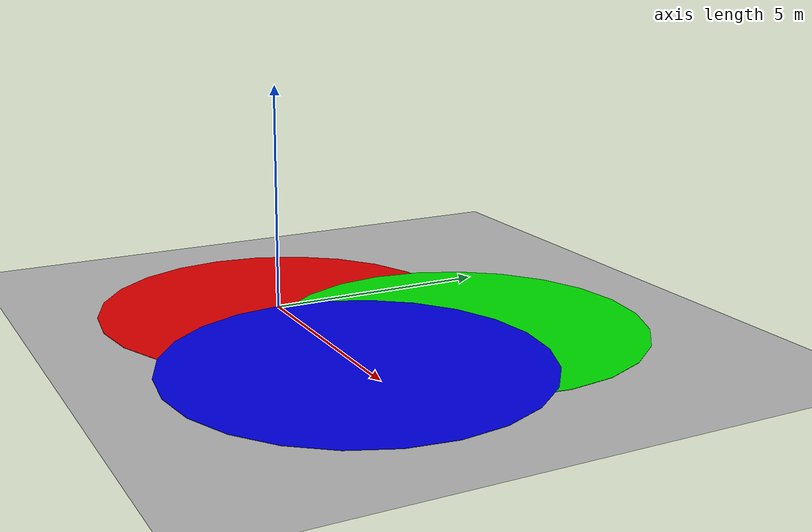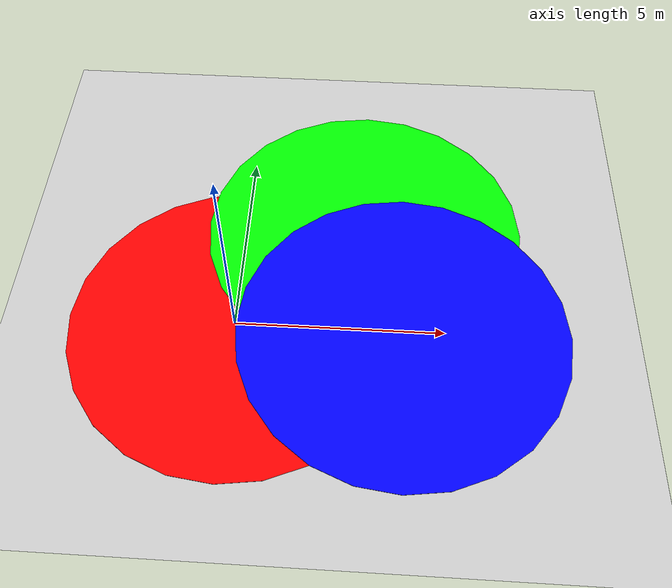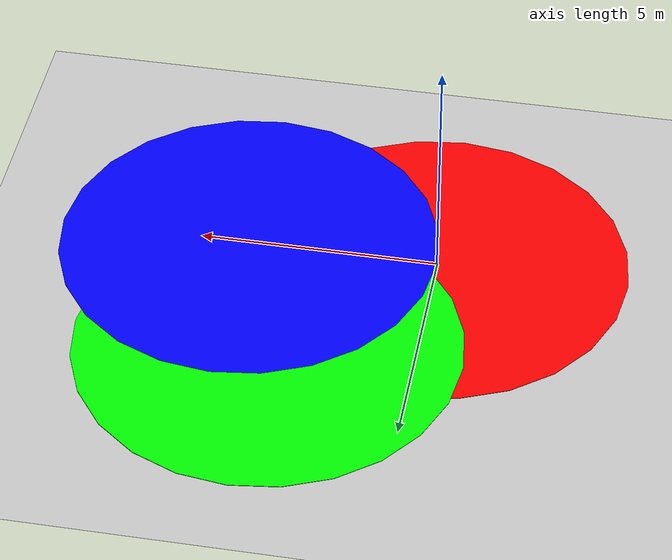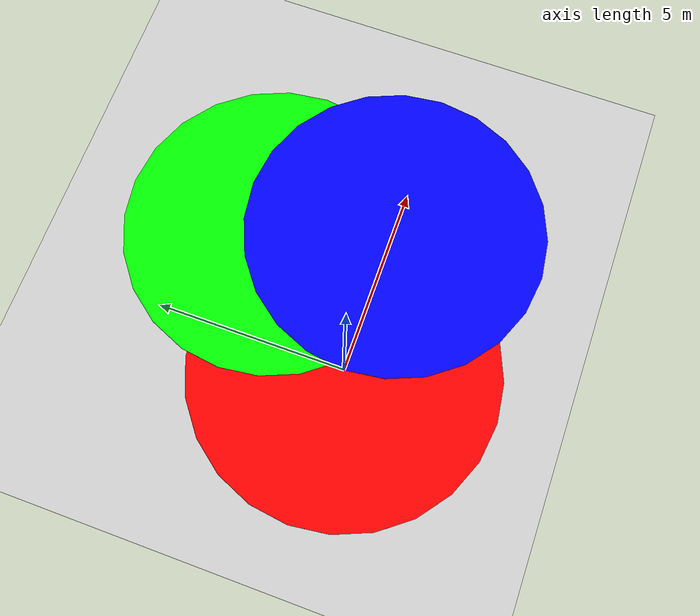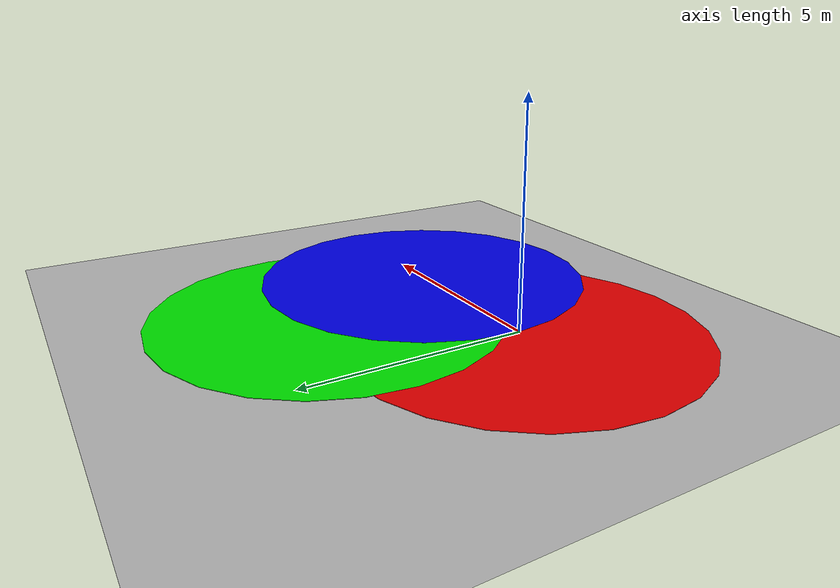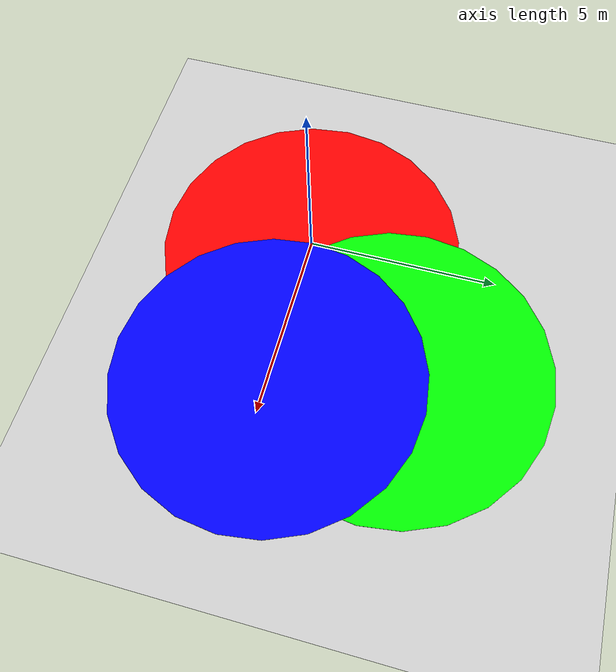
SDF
<?xml version="1.0"?>
<sdf version="1.8">
  <world name="leo_empty">
    <physics name="1ms" type="ignored">
      <max_step_size>0.002</max_step_size>
      <real_time_update_rate>200</real_time_update_rate>
    </physics>

    <plugin
      filename="ignition-gazebo-physics-system"
      name="ignition::gazebo::systems::Physics">
    </plugin>
    <plugin
      filename="ignition-gazebo-sensors-system"
      name="ignition::gazebo::systems::Sensors">
      <render_engine>ogre</render_engine>
    </plugin>
    <plugin
      filename="ignition-gazebo-scene-broadcaster-system"
      name="ignition::gazebo::systems::SceneBroadcaster">
    </plugin>
    <plugin
      filename="ignition-gazebo-user-commands-system"
      name="ignition::gazebo::systems::UserCommands">
    </plugin>
    <plugin filename="gz-sim-imu-system"
      name="gz::sim::systems::Imu">
    </plugin>

    <light name="sun" type="directional">
      <cast_shadows>true</cast_shadows>
      <pose>0 0 10 0 0 0</pose>
      <diffuse>0.8 0.8 0.8 1</diffuse>
      <specular>0.2 0.2 0.2 1</specular>
      <attenuation>
        <range>1000</range>
        <constant>0.9</constant>
        <linear>0.01</linear>
        <quadratic>0.001</quadratic>
      </attenuation>
      <direction>-0.5 0.1 -0.9</direction>
    </light>

    <model name="ground_plane">
      <static>true</static>
      <link name="link">
        <collision name="collision">
          <geometry>
            <plane>
              <normal>0 0 1</normal>
              <size>100 100</size>
            </plane>
          </geometry>
          <surface>
            <friction>
              <ode>
                <mu>50</mu>
              </ode>
              <bullet>
                <friction>1</friction>
                <friction2>1</friction2>
                <rolling_friction>0.1</rolling_friction>
              </bullet>
            </friction>
          </surface>
        </collision>
        <visual name="visual">
          <geometry>
            <plane>
              <normal>0 0 1</normal>
              <size>100 100</size>
            </plane>
          </geometry>
          <material>
            <ambient>0.8 0.8 0.8 1</ambient>
            <diffuse>0.8 0.8 0.8 1</diffuse>
            <specular>0.8 0.8 0.8 1</specular>
          </material>
        </visual>
      </link>
    </model>

    <model name="red_circle">
    <static>true</static>
    <link name="link">
        <visual name="circle_visual">
        <geometry>
            <cylinder>
            <radius>4.0</radius>
            <length>0.01</length>
            </cylinder>
        </geometry>
        <material>
            <ambient>1 0 0 1</ambient>
            <diffuse>1 0 0 1</diffuse>
        </material>
        <pose>0 0 0.003 0 0 0</pose>
        </visual>
    </link>
    </model>

    <model name="green_circle">
    <static>true</static>
    <link name="link">
        <visual name="circle_visual">
        <geometry>
            <cylinder>
            <radius>4.0</radius>
            <length>0.01</length>
            </cylinder>
        </geometry>
        <material>
            <ambient>0 1 0 1</ambient>
            <diffuse>0 1 0 1</diffuse>
        </material>
        <pose>3 3 0.004 0 0 0</pose>
        </visual>
    </link>
    </model>

    <model name="blue_circle">
    <static>true</static>
    <link name="link">
        <visual name="circle_visual">
        <geometry>
            <cylinder>
            <radius>4.0</radius>
            <length>0.01</length>
            </cylinder>
        </geometry>
        <material>
            <ambient>0 0 1 1</ambient>
            <diffuse>0 0 1 1</diffuse>
        </material>
        <pose>4 0 0.005 0 0 0</pose>
        </visual>
    </link>
    </model>

  </world>
</sdf>
